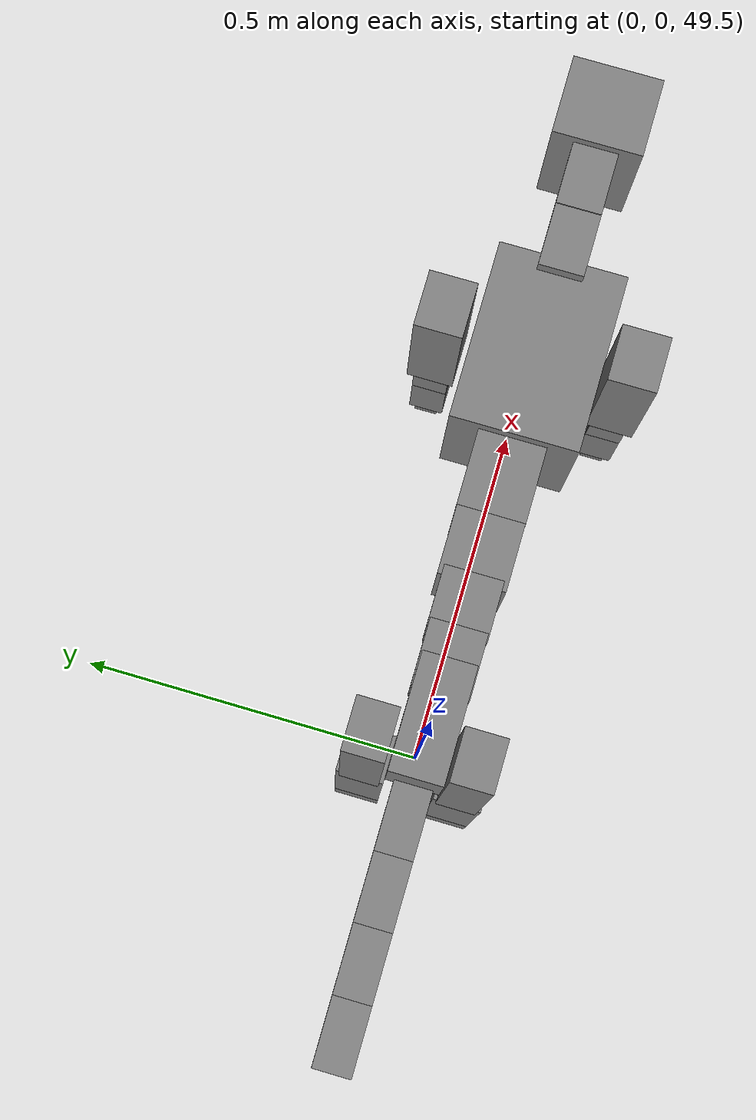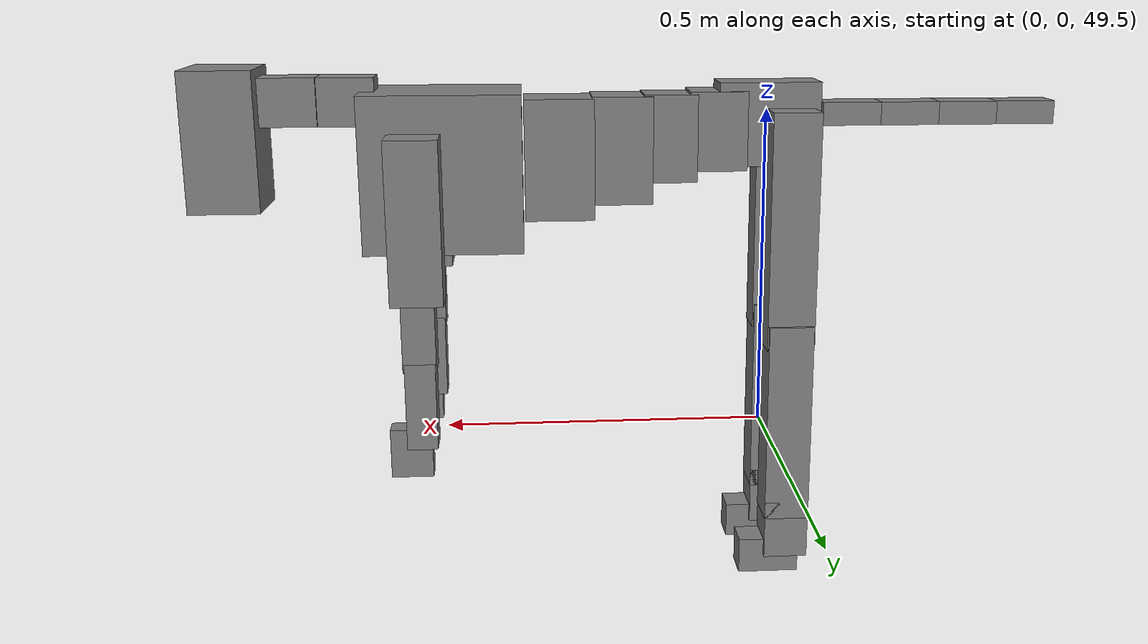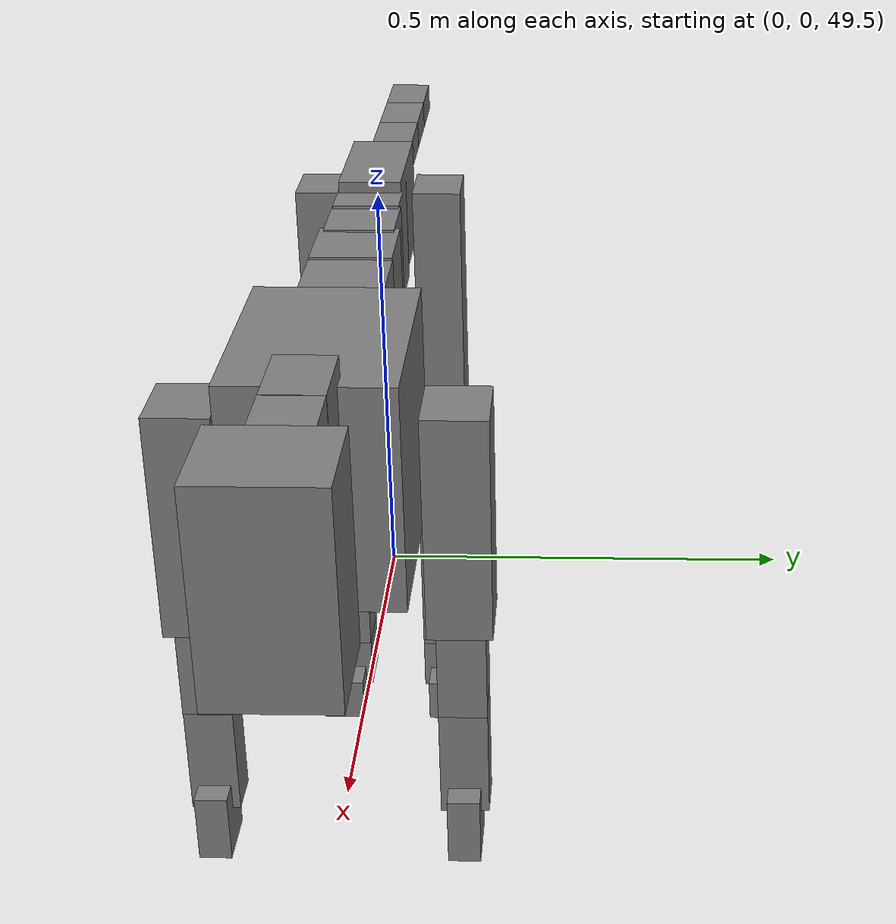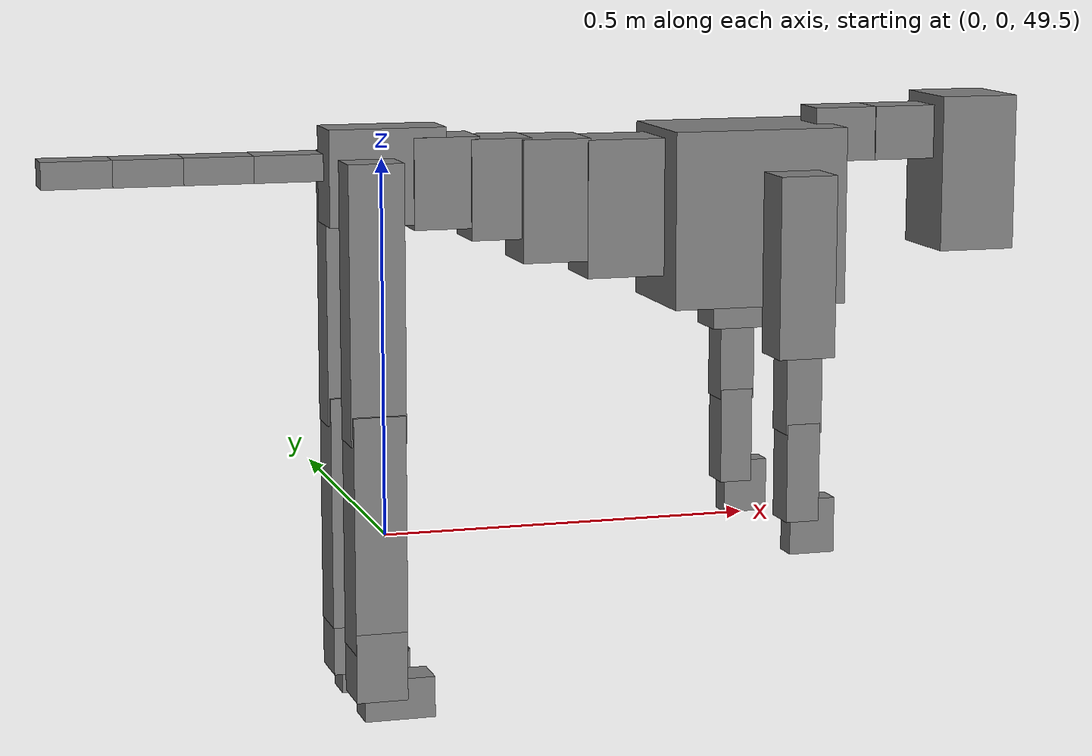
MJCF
<mujoco model="dog">

    <default>
        <joint armature="0.02" stiffness="1" damping="0.2" limited="true"/>
        <geom condim="3" friction="1 0.05 0.05" margin="0.01"/>
        <motor ctrllimited="true" ctrlrange="-1.0 1.0" forcelimited="true" gear="50"/>
    </default>

    <compiler inertiafromgeom="true" angle="radian"/>

    <option timestep="0.016" iterations="50" tolerance="1e-10" solver="Newton" jacobian="dense" cone="pyramidal"/>

    <size nconmax="20000" njmax="60000" nstack="5000000"/>
    <visual>
        <map force="0.1" zfar="30"/>
        <rgba haze="0.15 0.25 0.35 1"/>
        <quality shadowsize="2048"/>
        <global offwidth="800" offheight="800"/>
    </visual>

    <asset>
        <texture type="skybox" builtin="gradient" rgb1="0.3 0.5 0.7" rgb2="0 0 0" width="512" height="512"/>
        <texture name="texplane" type="2d" builtin="checker" rgb1=".2 .3 .4" rgb2=".1 0.15 0.2" width="512" height="512"
                 mark="cross" markrgb=".8 .8 .8"/>
        <texture name="texgeom" type="cube" builtin="flat" mark="cross" width="127" height="1278" rgb1="0.8 0.6 0.4"
                 rgb2="0.8 0.6 0.4" markrgb="1 1 1" random="0.01"/>

        <material name="matplane" reflectance="0.3" texture="texplane" texrepeat="1 1" texuniform="true"/>
        <material name="matgeom" texture="texgeom" texuniform="true" rgba="0.8 0.6 .4 1"/>
    </asset>

    <worldbody>
        <geom name="floor" pos="0 0 0" size="0 0 .25" type="plane" material="matplane" condim="3"/>

        <light directional="false" diffuse=".2 .2 .2" specular="0 0 0" pos="0 0 5" dir="0 0 -1" castshadow="false"/>
        <light mode="targetbodycom" target="torso" directional="false" diffuse=".8 .8 .8" specular="0.3 0.3 0.3"
               pos="0 0 4.0" dir="0 0 -1"/>

        <body name="root" pos="0 0 50">
            <freejoint name="root_1"/>
            <geom type="box" pos="0 0 -0.02" size="0.0774  0.0358  0.063" density="2030"/>

            <body name="spine1" pos="0.054 0 0">
                <joint name="spine1_y" axis="0 1 0" range="0 0.7" limited="true"/>
                <geom type="box" pos="0.02375 0 -0.03" size="0.04375  0.0375  0.05985" density="2030"/>

                <body name="spine2" pos="0.0612 0 0">
                    <joint name="spine2_y" axis="0 1 0" range="-0.15 0.15" limited="true"/>
                    <geom type="box" pos="0.03555  0  -0.04" size="0.04055  0.039  0.06615" density="2030"/>

                    <body name="spine3" pos="0.0730 0 0">
                        <joint name="spine3_y" axis="0 1 0" range="-0.15 0.15" limited="true"/>
                        <geom type="box" pos="0.03555  0  -0.057" size="0.04555  0.0445  0.081" density="2030"/>

                        <body name="spine4" pos="0.0780 0 0">
                            <joint name="spine4_y" axis="0 1 0" range="-0.15 0.15" limited="true"/>
                            <geom type="box" pos="0.05265  0  -0.07" size="0.05265  0.045  0.09135" density="2030"/>

                            <body name="torso" pos="0.1082 0 0">
                                <joint name="torso_y" axis="0 1 0" range="-0.15 0.15" limited="true"/>
                                <geom type="box" pos="0.11925  0  -0.085" size="0.11925  0.085  0.11745"
                                      density="2030"/>

                                <body name="neck1" pos="0.2160  0   0.0180">
                                    <joint name="neck1_y" axis="0 1 0" range="-1.2  -1" limited="true"/>
                                    <geom type="box" pos="0.0423  0  0" size="0.0423  0.03  0.036" density="2325"/>

                                    <body name="neck2" pos="0.0853  0  0">
                                        <joint name="neck2_y" axis="0 1 0" range="0.1  0" limited="true"/>
                                        <geom type="box" pos="0.0423  0  0" size="0.0423  0.03  0.036" density="2325"/>

                                        <body name="head" pos="0.0853  0  0">
                                            <joint name="head_y" axis="0 1 0" range="-0.3  -0.2" limited="true"/>
                                            <geom type="box" pos="0.0531  0  -0.055" size="0.0531  0.06  0.1044"
                                                  density="4030"/>

                                        </body>
                                    </body>
                                </body>

                                <body name="front_shoulder" pos="0.156  0   -0.0480">
                                    <joint name="front_shoulder_y" axis="0 1 0" range="-1 1.5" limited="true"/>
                                    <geom type="box" pos="0 0.13 -0.0935" size="0.0386  0.0330  0.1201" density="1158"/>
                                    <geom type="box" pos="0 -0.13 -0.0935" size="0.0386  0.0330  0.1201"
                                          density="1158"/>

                                    <body name="front_elbow" pos="0  0  -0.1870">
                                        <joint name="front_elbow_y" axis="0 1 0" range="-2 0" limited="true"/>
                                        <geom type="box" pos="0 0.13 -0.0641" size="0.0245  0.0250  0.0641"
                                              density="1081"/>
                                        <geom type="box" pos="0 -0.13 -0.0641" size="0.0245  0.0250  0.0641"
                                              density="1081"/>

                                        <body name="front_wrist" pos="0  0  -0.1281">
                                            <joint name="front_wrist_y" axis="0 1 0" range="-0.2 0" limited="true"/>
                                            <geom type="box" pos="0 0.13 -0.0526" size="0.0226  0.0251  0.0658"
                                                  density="1664"/>
                                            <geom type="box" pos="0 -0.13 -0.0526" size="0.0226  0.0251  0.0658"
                                                  density="1664"/>

                                            <body name="front_finger_end" pos="0  0  -0.1052">
                                                <joint name="front_finger_y" axis="0 1 0" range="-0.4 1"
                                                       limited="true"/>
                                                <geom type="box" pos="0.0169  0.13  -0.0219"
                                                      size="0.0310  0.0169  0.0369" density="1515"/>
                                                <geom type="box" pos="0.0169  -0.13  -0.0219"
                                                      size="0.0310  0.0169  0.0369" density="1515"/>

                                            </body>

                                        </body>
                                    </body>
                                </body>

                            </body>
                        </body>
                    </body>
                </body>
            </body>

            <body name="back_hip" pos="-0.03 0 -0.018">
                <joint name="back_hip_y" axis="0 1 0" range="-1.5 0.3" limited="true"/>
                <geom type="box" pos="0 0.07 -0.1588" size="0.0365  0.0286  0.1816" density="1154"/>
                <geom type="box" pos="0 -0.07 -0.1588" size="0.0365  0.0286  0.1816" density="1154"/>

                <body name="back_knee" pos="0  0  -0.3176">
                    <joint name="back_knee_y" axis="0 1 0" range="0 2.8" limited="true"/>
                    <geom type="box" pos="0 0.07 -0.1410" size="0.0345  0.0340  0.1565" density="1227"/>
                    <geom type="box" pos="0 -0.07 -0.1410" size="0.0345  0.0340  0.1565" density="1227"/>

                    <body name="back_ankle" pos="0  0  -0.2819">
                        <joint name="back_ankle_y" axis="0 1 0" range="-2.2 0" limited="true"/>
                        <geom type="box" pos="0 0.07 -0.0345" size="0.0340  0.0340  0.0458" density="1284"/>
                        <geom type="box" pos="0 -0.07 -0.0345" size="0.0340  0.0340  0.0458" density="1284"/>

                        <body name="back_toe_end" pos="0  0  -0.0690">
                            <joint name="back_toe_y" axis="0 1 0" range="-0.4 1" limited="true"/>
                            <geom type="box" pos="0.0256  0.07  -0.0124" size="0.0470  0.0256  0.0274" density="1515"/>
                            <geom type="box" pos="0.0256  -0.07  -0.0124" size="0.0470  0.0256  0.0274" density="1515"/>

                        </body>
                    </body>
                </body>
            </body>

            <body name="tail1" pos="-0.074 0 -0.006">
                <joint name="tail1_y" axis="0 1 0" range="-0.2 0.2" limited="true"/>
                <geom type="box" pos="-0.0536  0  0" size="0.045  0.025  0.0175" density="1587"/>

                <body name="tail2" pos="-0.09 0 0">
                    <joint name="tail2_y" axis="0 1 0" range="-0.2 0.2" limited="true"/>
                    <geom type="box" pos="-0.0536  0  0" size="0.045  0.025  0.0175" density="1587"/>

                    <body name="tail3" pos="-0.09 0 0">
                        <joint name="tail3_y" axis="0 1 0" range="-0.2 0.2" limited="true"/>
                        <geom type="box" pos="-0.0536  0  0" size="0.045  0.025  0.0175" density="1587"/>

                        <body name="tail4" pos="-0.09 0 0">
                            <joint name="tail4_y" axis="0 1 0" range="-0.2 0.2" limited="true"/>
                            <geom type="box" pos="-0.0536  0  0" size="0.045  0.025  0.0175" density="1587"/>

                        </body>
                    </body>
                </body>
            </body>
        </body>
    </worldbody>

    <actuator>
        <motor joint="spine1_y" forcerange="-150 150     "/>
        <motor joint="spine2_y" forcerange="-150 150     "/>
        <motor joint="spine3_y" forcerange="-150 150     "/>
        <motor joint="spine4_y" forcerange="-150 150     "/>
        <motor joint="torso_y" forcerange="-150 150     "/>
        <motor joint="neck1_y" forcerange="-100 100       "/>
        <motor joint="neck2_y" forcerange="-100 100       "/>
        <motor joint="head_y" forcerange="-150 150       "/>
        <motor joint="front_shoulder_y" forcerange="-135.27 184.60"/>
        <motor joint="front_elbow_y" forcerange="-132.95 149.12"/>
        <motor joint="front_wrist_y" forcerange="-64.15 136.39"/>
        <motor joint="front_finger_y" forcerange="-29.65 20.45"/>
        <motor joint="back_hip_y" forcerange="-357.87 223.39"/>
        <motor joint="back_knee_y" forcerange="-348.99 345.24"/>
        <motor joint="back_angle_y" forcerange="-242.26 201.15"/>
        <motor joint="back_toe_y" forcerange="-63.16 61.83"/>
        <motor joint="tail1_y" forcerange="-50 50     "/>
        <motor joint="tail2_y" forcerange="-50 50     "/>
        <motor joint="tail3_y" forcerange="-50 50     "/>
        <motor joint="tail4_y" forcerange="-50 50     "/>
    </actuator>
</mujoco>
